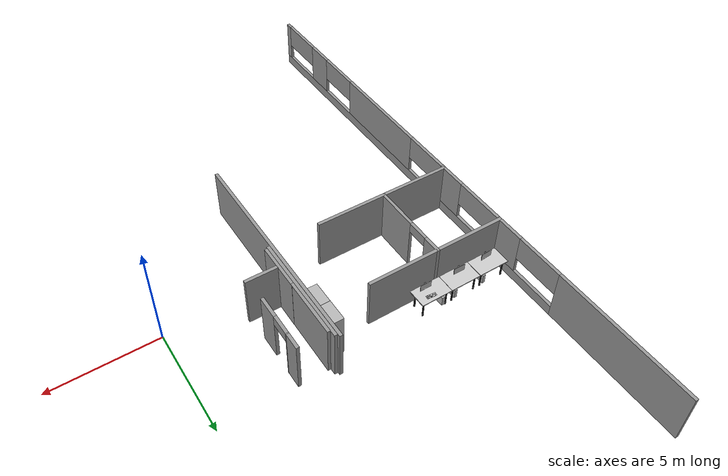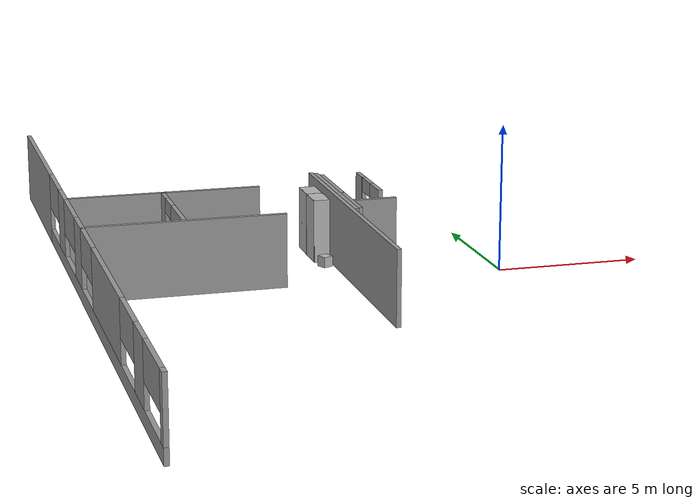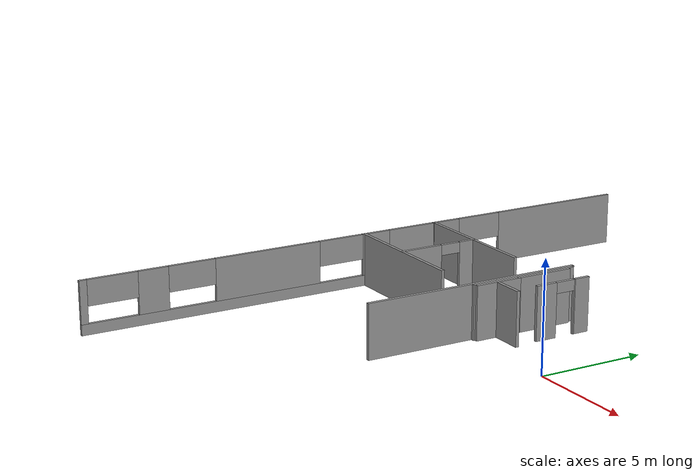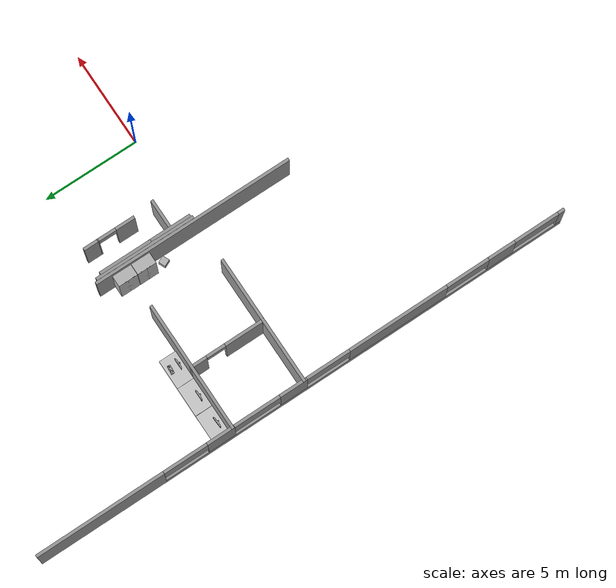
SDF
<sdf version="1.6">
 <world name="default">
  <model name="basement">
   <link name="Wall_1">
    <pose>-14.1254 0.001772 0 0 0 -1.5708</pose>
    <visual name="Wall_1_Visual_0">
     <pose>-10.8889 0 1.25 0 -0 0</pose>
     <geometry><box><size>6.72223 0.15 2.5</size></box></geometry>
     <material>
      <script><uri>file://media/materials/scripts/gazebo.material</uri><name>Gazebo/Grey</name></script>
      <ambient>1 1 1 1</ambient>
     </material>
    </visual>
    <collision name="Wall_1_Collision_0">
     <geometry><box><size>6.72223 0.15 2.5</size></box></geometry>
     <pose>-10.8889 0 1.25 0 -0 0</pose>
    </collision>
    <visual name="Wall_1_Visual_1">
     <pose>3.36112 0 0.25 0 -0 0</pose>
     <geometry><box><size>21.7778 0.15 0.5</size></box></geometry>
     <material>
      <script><uri>file://media/materials/scripts/gazebo.material</uri><name>Gazebo/Grey</name></script>
      <ambient>1 1 1 1</ambient>
     </material>
    </visual>
    <collision name="Wall_1_Collision_1">
     <geometry><box><size>21.7778 0.15 0.5</size></box></geometry>
     <pose>3.36112 0 0.25 0 -0 0</pose>
    </collision>
    <visual name="Wall_1_Visual_2">
     <pose>-4.48488 0 1.5 0 -0 0</pose>
     <geometry><box><size>1.45334 0.15 2</size></box></geometry>
     <material>
      <script><uri>file://media/materials/scripts/gazebo.material</uri><name>Gazebo/Grey</name></script>
      <ambient>1 1 1 1</ambient>
     </material>
    </visual>
    <collision name="Wall_1_Collision_2">
     <geometry><box><size>1.45334 0.15 2</size></box></geometry>
     <pose>-4.48488 0 1.5 0 -0 0</pose>
    </collision>
    <visual name="Wall_1_Visual_3">
     <pose>-0.57841 0 1.5 0 -0 0</pose>
     <geometry><box><size>1.45641 0.15 2</size></box></geometry>
     <material>
      <script><uri>file://media/materials/scripts/gazebo.material</uri><name>Gazebo/Grey</name></script>
      <ambient>1 1 1 1</ambient>
     </material>
    </visual>
    <collision name="Wall_1_Collision_3">
     <geometry><box><size>1.45641 0.15 2</size></box></geometry>
     <pose>-0.57841 0 1.5 0 -0 0</pose>
    </collision>
    <visual name="Wall_1_Visual_4">
     <pose>5.12077 0 1.5 0 -0 0</pose>
     <geometry><box><size>5.31789 0.15 2</size></box></geometry>
     <material>
      <script><uri>file://media/materials/scripts/gazebo.material</uri><name>Gazebo/Grey</name></script>
      <ambient>1 1 1 1</ambient>
     </material>
    </visual>
    <collision name="Wall_1_Collision_4">
     <geometry><box><size>5.31789 0.15 2</size></box></geometry>
     <pose>5.12077 0 1.5 0 -0 0</pose>
    </collision>
    <visual name="Wall_1_Visual_5">
     <pose>10.7967 0 1.5 0 -0 0</pose>
     <geometry><box><size>1.45641 0.15 2</size></box></geometry>
     <material>
      <script><uri>file://media/materials/scripts/gazebo.material</uri><name>Gazebo/Grey</name></script>
      <ambient>1 1 1 1</ambient>
     </material>
    </visual>
    <collision name="Wall_1_Collision_5">
     <geometry><box><size>1.45641 0.15 2</size></box></geometry>
     <pose>10.7967 0 1.5 0 -0 0</pose>
    </collision>
    <visual name="Wall_1_Visual_6">
     <pose>14.0784 0 1.5 0 -0 0</pose>
     <geometry><box><size>0.343295 0.15 2</size></box></geometry>
     <material>
      <script><uri>file://media/materials/scripts/gazebo.material</uri><name>Gazebo/Grey</name></script>
      <ambient>1 1 1 1</ambient>
     </material>
    </visual>
    <collision name="Wall_1_Collision_6">
     <geometry><box><size>0.343295 0.15 2</size></box></geometry>
     <pose>14.0784 0 1.5 0 -0 0</pose>
    </collision>
    <visual name="Wall_1_Visual_7">
     <pose>-6.36966 0 1.9 0 -0 0</pose>
     <geometry><box><size>2.31621 0.15 1.2</size></box></geometry>
     <material>
      <script><uri>file://media/materials/scripts/gazebo.material</uri><name>Gazebo/Grey</name></script>
      <ambient>1 1 1 1</ambient>
     </material>
    </visual>
    <collision name="Wall_1_Collision_7">
     <geometry><box><size>2.31621 0.15 1.2</size></box></geometry>
     <pose>-6.36966 0 1.9 0 -0 0</pose>
    </collision>
    <visual name="Wall_1_Visual_8">
     <pose>-2.53241 0 1.9 0 -0 0</pose>
     <geometry><box><size>2.4516 0.15 1.2</size></box></geometry>
     <material>
      <script><uri>file://media/materials/scripts/gazebo.material</uri><name>Gazebo/Grey</name></script>
      <ambient>1 1 1 1</ambient>
     </material>
    </visual>
    <collision name="Wall_1_Collision_8">
     <geometry><box><size>2.4516 0.15 1.2</size></box></geometry>
     <pose>-2.53241 0 1.9 0 -0 0</pose>
    </collision>
    <visual name="Wall_1_Visual_9">
     <pose>1.30581 0 1.9 0 -0 0</pose>
     <geometry><box><size>2.31203 0.15 1.2</size></box></geometry>
     <material>
      <script><uri>file://media/materials/scripts/gazebo.material</uri><name>Gazebo/Grey</name></script>
      <ambient>1 1 1 1</ambient>
     </material>
    </visual>
    <collision name="Wall_1_Collision_9">
     <geometry><box><size>2.31203 0.15 1.2</size></box></geometry>
     <pose>1.30581 0 1.9 0 -0 0</pose>
    </collision>
    <visual name="Wall_1_Visual_10">
     <pose>8.9241 0 1.9 0 -0 0</pose>
     <geometry><box><size>2.28877 0.15 1.2</size></box></geometry>
     <material>
      <script><uri>file://media/materials/scripts/gazebo.material</uri><name>Gazebo/Grey</name></script>
      <ambient>1 1 1 1</ambient>
     </material>
    </visual>
    <collision name="Wall_1_Collision_10">
     <geometry><box><size>2.28877 0.15 1.2</size></box></geometry>
     <pose>8.9241 0 1.9 0 -0 0</pose>
    </collision>
    <visual name="Wall_1_Visual_11">
     <pose>12.7158 0 1.9 0 -0 0</pose>
     <geometry><box><size>2.38181 0.15 1.2</size></box></geometry>
     <material>
      <script><uri>file://media/materials/scripts/gazebo.material</uri><name>Gazebo/Grey</name></script>
      <ambient>1 1 1 1</ambient>
     </material>
    </visual>
    <collision name="Wall_1_Collision_11">
     <geometry><box><size>2.38181 0.15 1.2</size></box></geometry>
     <pose>12.7158 0 1.9 0 -0 0</pose>
    </collision>
   </link>
   <link name="Wall_146">
    <collision name="Wall_146_Collision">
     <geometry><box><size>5.25 0.15 2.5</size></box></geometry>
     <pose>0 0 1.25 0 -0 0</pose>
    </collision>
    <visual name="Wall_146_Visual">
     <pose>0 0 1.25 0 -0 0</pose>
     <geometry><box><size>5.25 0.15 2.5</size></box></geometry>
     <material>
      <script><uri>file://media/materials/scripts/gazebo.material</uri><name>Gazebo/Grey</name></script>
      <ambient>1 1 1 1</ambient>
     </material>
    </visual>
    <pose>-5.04892 2.61682 0 0 -0 1.5708</pose>
   </link>
   <link name="Wall_17">
    <collision name="Wall_17_Collision">
     <geometry><box><size>6.75 0.15 2.5</size></box></geometry>
     <pose>0 0 1.25 0 -0 0</pose>
    </collision>
    <visual name="Wall_17_Visual">
     <pose>0 0 1.25 0 -0 0</pose>
     <geometry><box><size>6.75 0.15 2.5</size></box></geometry>
     <material>
      <script><uri>file://media/materials/scripts/gazebo.material</uri><name>Gazebo/Grey</name></script>
      <ambient>1 1 1 1</ambient>
     </material>
    </visual>
    <pose>-10.8156 0.004484 0 0 -0 0</pose>
   </link>
   <link name="Wall_19">
    <collision name="Wall_19_Collision">
     <geometry><box><size>6.75 0.15 2.5</size></box></geometry>
     <pose>0 0 1.25 0 -0 0</pose>
    </collision>
    <visual name="Wall_19_Visual">
     <pose>0 0 1.25 0 -0 0</pose>
     <geometry><box><size>6.75 0.15 2.5</size></box></geometry>
     <material>
      <script><uri>file://media/materials/scripts/gazebo.material</uri><name>Gazebo/Grey</name></script>
      <ambient>1 1 1 1</ambient>
     </material>
    </visual>
    <pose>-10.8156 3.85656 0 0 -0 0</pose>
   </link>
   <link name="Wall_21">
    <pose>-10.8088 1.93156 0 0 0 -1.5708</pose>
    <visual name="Wall_21_Visual_0">
     <pose>-1.56265 0 1.25 0 -0 0</pose>
     <geometry><box><size>0.874704 0.15 2.5</size></box></geometry>
     <material>
      <script><uri>file://media/materials/scripts/gazebo.material</uri><name>Gazebo/Grey</name></script>
      <ambient>1 1 1 1</ambient>
     </material>
    </visual>
    <collision name="Wall_21_Collision_0">
     <geometry><box><size>0.874704 0.15 2.5</size></box></geometry>
     <pose>-1.56265 0 1.25 0 -0 0</pose>
    </collision>
    <visual name="Wall_21_Visual_1">
     <pose>0.933876 0 1.25 0 -0 0</pose>
     <geometry><box><size>2.13225 0.15 2.5</size></box></geometry>
     <material>
      <script><uri>file://media/materials/scripts/gazebo.material</uri><name>Gazebo/Grey</name></script>
      <ambient>1 1 1 1</ambient>
     </material>
    </visual>
    <collision name="Wall_21_Collision_1">
     <geometry><box><size>2.13225 0.15 2.5</size></box></geometry>
     <pose>0.933876 0 1.25 0 -0 0</pose>
    </collision>
    <visual name="Wall_21_Visual_2">
     <pose>-0.628773 0 2.25 0 -0 0</pose>
     <geometry><box><size>0.993048 0.15 0.5</size></box></geometry>
     <material>
      <script><uri>file://media/materials/scripts/gazebo.material</uri><name>Gazebo/Grey</name></script>
      <ambient>1 1 1 1</ambient>
     </material>
    </visual>
    <collision name="Wall_21_Collision_2">
     <geometry><box><size>0.993048 0.15 0.5</size></box></geometry>
     <pose>-0.628773 0 2.25 0 -0 0</pose>
    </collision>
   </link>
   <link name="Wall_29">
    <collision name="Wall_29_Collision">
     <geometry><box><size>10.5 0.15 2.5</size></box></geometry>
     <pose>0 0 1.25 0 -0 0</pose>
    </collision>
    <visual name="Wall_29_Visual">
     <pose>0 0 1.25 0 -0 0</pose>
     <geometry><box><size>10.5 0.15 2.5</size></box></geometry>
     <material>
      <script><uri>file://media/materials/scripts/gazebo.material</uri><name>Gazebo/Grey</name></script>
      <ambient>1 1 1 1</ambient>
     </material>
    </visual>
    <pose>-5.20099 0.119525 0 0 0 -1.5708</pose>
   </link>
   <link name="Wall_47">
    <collision name="Wall_47_Collision">
     <geometry><box><size>2.75 0.15 2.5</size></box></geometry>
     <pose>0 0 1.25 0 -0 0</pose>
    </collision>
    <visual name="Wall_47_Visual">
     <pose>0 0 1.25 0 -0 0</pose>
     <geometry><box><size>2.75 0.15 2.5</size></box></geometry>
     <material>
      <script><uri>file://media/materials/scripts/gazebo.material</uri><name>Gazebo/Grey</name></script>
      <ambient>1 1 1 1</ambient>
     </material>
    </visual>
    <pose>-4.91322 3.5855 0 0 0 -1.5708</pose>
   </link>
   <link name="Wall_55">
    <collision name="Wall_55_Collision">
     <geometry><box><size>0.75 0.15 2.5</size></box></geometry>
     <pose>0 0 1.25 0 -0 0</pose>
    </collision>
    <visual name="Wall_55_Visual">
     <pose>0 0 1.25 0 -0 0</pose>
     <geometry><box><size>0.75 0.15 2.5</size></box></geometry>
     <material>
      <script><uri>file://media/materials/scripts/gazebo.material</uri><name>Gazebo/Grey</name></script>
      <ambient>1 1 1 1</ambient>
     </material>
    </visual>
    <pose>-3.56641 4.59591 0 0 0 -1.5708</pose>
   </link>
   <link name="Wall_59">
    <pose>-3.56584 3.2285 0 0 -0 1.5708</pose>
    <visual name="Wall_59_Visual_0">
     <pose>-0.488849 0 1.25 0 -0 0</pose>
     <geometry><box><size>1.0223 0.15 2.5</size></box></geometry>
     <material>
      <script><uri>file://media/materials/scripts/gazebo.material</uri><name>Gazebo/Grey</name></script>
      <ambient>1 1 1 1</ambient>
     </material>
    </visual>
    <collision name="Wall_59_Collision_0">
     <geometry><box><size>1.0223 0.15 2.5</size></box></geometry>
     <pose>-0.488849 0 1.25 0 -0 0</pose>
    </collision>
    <visual name="Wall_59_Visual_1">
     <pose>0.972494 0 1.25 0 -0 0</pose>
     <geometry><box><size>0.055013 0.15 2.5</size></box></geometry>
     <material>
      <script><uri>file://media/materials/scripts/gazebo.material</uri><name>Gazebo/Grey</name></script>
      <ambient>1 1 1 1</ambient>
     </material>
    </visual>
    <collision name="Wall_59_Collision_1">
     <geometry><box><size>0.055013 0.15 2.5</size></box></geometry>
     <pose>0.972494 0 1.25 0 -0 0</pose>
    </collision>
    <visual name="Wall_59_Visual_2">
     <pose>0.483645 0 2.25 0 -0 0</pose>
     <geometry><box><size>0.922684 0.15 0.5</size></box></geometry>
     <material>
      <script><uri>file://media/materials/scripts/gazebo.material</uri><name>Gazebo/Grey</name></script>
      <ambient>1 1 1 1</ambient>
     </material>
    </visual>
    <collision name="Wall_59_Collision_2">
     <geometry><box><size>0.922684 0.15 0.5</size></box></geometry>
     <pose>0.483645 0 2.25 0 -0 0</pose>
    </collision>
   </link>
   <link name="Wall_61">
    <collision name="Wall_61_Collision">
     <geometry><box><size>2.25 0.15 2.5</size></box></geometry>
     <pose>0 0 1.25 0 -0 0</pose>
    </collision>
    <visual name="Wall_61_Visual">
     <pose>0 0 1.25 0 -0 0</pose>
     <geometry><box><size>2.25 0.15 2.5</size></box></geometry>
     <material>
      <script><uri>file://media/materials/scripts/gazebo.material</uri><name>Gazebo/Grey</name></script>
      <ambient>1 1 1 1</ambient>
     </material>
    </visual>
    <pose>-4.90974 1.19358 0 0 -0 1.5708</pose>
   </link>
   <link name="Wall_69">
    <collision name="Wall_69_Collision">
     <geometry><box><size>1.5 0.15 2.5</size></box></geometry>
     <pose>0 0 1.25 0 -0 0</pose>
    </collision>
    <visual name="Wall_69_Visual">
     <pose>0 0 1.25 0 -0 0</pose>
     <geometry><box><size>1.5 0.15 2.5</size></box></geometry>
     <material>
      <script><uri>file://media/materials/scripts/gazebo.material</uri><name>Gazebo/Grey</name></script>
      <ambient>1 1 1 1</ambient>
     </material>
    </visual>
    <pose>-4.10188 1.14165 0 0 -0 0</pose>
   </link>
   <static>1</static>
  </model>
  <model name="wardrobe_0">
   <link name="link">
    <visual name="visual">
     <geometry><mesh><uri>model://cabinet/meshes/cabinet.dae</uri><scale>1 1 1</scale></mesh></geometry>
    </visual>
    <collision name="collision">
     <geometry><mesh><uri>model://cabinet/meshes/cabinet.dae</uri><scale>1 1 1</scale></mesh></geometry>
    </collision>
   </link>
   <static>1</static>
   <pose>-5.55 4.05207 0 0 0 -1.5707</pose>
  </model>
  <model name="wardrobe_1">
   <link name="link">
    <visual name="visual">
     <geometry><mesh><uri>model://cabinet/meshes/cabinet.dae</uri><scale>1 1 1</scale></mesh></geometry>
    </visual>
    <collision name="collision">
     <geometry><mesh><uri>model://cabinet/meshes/cabinet.dae</uri><scale>1 1 1</scale></mesh></geometry>
    </collision>
   </link>
   <static>1</static>
   <pose>-5.55012 3.03744 0 0 0 -1.5707</pose>
  </model>
  <model name="office_table_2">
   <link name="link">
    <visual name="visual">
     <geometry><mesh><uri>model://office_table/meshes/office_table.dae</uri><scale>1 1 1</scale></mesh></geometry>
    </visual>
    <collision name="collision">
     <geometry><mesh><uri>model://office_table/meshes/office_table.dae</uri><scale>1 1 1</scale></mesh></geometry>
    </collision>
   </link>
   <static>1</static>
   <pose>-10.1891 4.4 0 0 -0 0</pose>
  </model>
  <model name="office_table_5">
   <link name="link">
    <visual name="visual">
     <geometry><mesh><uri>model://office_table/meshes/office_table.dae</uri><scale>1 1 1</scale></mesh></geometry>
    </visual>
    <collision name="collision">
     <geometry><mesh><uri>model://office_table/meshes/office_table.dae</uri><scale>1 1 1</scale></mesh></geometry>
    </collision>
   </link>
   <static>1</static>
   <pose>-11.7071 4.4 0 0 -0 0</pose>
  </model>
  <model name="office_table_6">
   <link name="link">
    <visual name="visual">
     <geometry><mesh><uri>model://office_table/meshes/office_table.dae</uri><scale>1 1 1</scale></mesh></geometry>
    </visual>
    <collision name="collision">
     <geometry><mesh><uri>model://office_table/meshes/office_table.dae</uri><scale>1 1 1</scale></mesh></geometry>
    </collision>
   </link>
   <static>1</static>
   <pose>-13.2354 4.4 0 0 -0 0</pose>
  </model>
  <model name="pc">
   <link name="link">
    <visual name="visual">
     <geometry><mesh><uri>model://pc/meshes/pc.dae</uri><scale>1 1 1</scale></mesh></geometry>
    </visual>
    <collision name="collision">
     <geometry><mesh><uri>model://pc/meshes/pc.dae</uri><scale>1 1 1</scale></mesh></geometry>
    </collision>
   </link>
   <static>1</static>
   <pose>-11.3419 4.48606 0 0 -0 3.141</pose>
  </model>
  <model name="pc_0">
   <link name="link">
    <visual name="visual">
     <geometry><mesh><uri>model://pc/meshes/pc.dae</uri><scale>1 1 1</scale></mesh></geometry>
    </visual>
    <collision name="collision">
     <geometry><mesh><uri>model://pc/meshes/pc.dae</uri><scale>1 1 1</scale></mesh></geometry>
    </collision>
   </link>
   <static>1</static>
   <pose>-12.8626 4.49995 0 0 -0 3.141</pose>
  </model>
  <model name="pc_1">
   <link name="link">
    <visual name="visual">
     <geometry><mesh><uri>model://pc/meshes/pc.dae</uri><scale>1 1 1</scale></mesh></geometry>
    </visual>
    <collision name="collision">
     <geometry><mesh><uri>model://pc/meshes/pc.dae</uri><scale>1 1 1</scale></mesh></geometry>
    </collision>
   </link>
   <static>1</static>
   <pose>-10.6413 4.52563 0 0 -0 3.141</pose>
  </model>
  <model name="monitor">
   <link name="link">
    <visual name="visual">
     <geometry><mesh><uri>model://monitor/meshes/monitor.dae</uri><scale>1 1 1</scale></mesh></geometry>
    </visual>
    <collision name="collision">
     <geometry><mesh><uri>model://monitor/meshes/monitor.dae</uri><scale>1 1 1</scale></mesh></geometry>
    </collision>
   </link>
   <static>1</static>
   <pose>-13.3236 4.21798 1 0 0 -3.07367</pose>
  </model>
  <model name="monitor_0">
   <link name="link">
    <visual name="visual">
     <geometry><mesh><uri>model://monitor/meshes/monitor.dae</uri><scale>1 1 1</scale></mesh></geometry>
    </visual>
    <collision name="collision">
     <geometry><mesh><uri>model://monitor/meshes/monitor.dae</uri><scale>1 1 1</scale></mesh></geometry>
    </collision>
   </link>
   <static>1</static>
   <pose>-11.842 4.2272 1 0 -0 3.12865</pose>
  </model>
  <model name="monitor_1">
   <link name="link">
    <visual name="visual">
     <geometry><mesh><uri>model://monitor/meshes/monitor.dae</uri><scale>1 1 1</scale></mesh></geometry>
    </visual>
    <collision name="collision">
     <geometry><mesh><uri>model://monitor/meshes/monitor.dae</uri><scale>1 1 1</scale></mesh></geometry>
    </collision>
   </link>
   <static>1</static>
   <pose>-10.0972 4.20184 1 0 0 -3.12724</pose>
  </model>
  <model name="keyboard_4">
   <link name="link">
    <visual name="visual">
     <geometry><mesh><uri>model://keyboard/meshes/keyboard.dae</uri><scale>1 1 1</scale></mesh></geometry>
    </visual>
    <collision name="collision">
     <geometry><mesh><uri>model://keyboard/meshes/keyboard.dae</uri><scale>1 1 1</scale></mesh></geometry>
    </collision>
   </link>
   <static>1</static>
   <pose>-10.0948 4.61573 0.78 0 -0 3.05121</pose>
  </model>
  <model name="box_2">
   <link name="link">
    <visual name="visual">
     <geometry><mesh><uri>model://box/meshes/box.dae</uri><scale>1 1 1</scale></mesh></geometry>
    </visual>
    <collision name="collision">
     <geometry><mesh><uri>model://box/meshes/box.dae</uri><scale>1 1 1</scale></mesh></geometry>
    </collision>
   </link>
   <static>1</static>
   <pose>-5.52873 2.06798 0 0 -0 0.411495</pose>
  </model>
 </world>
</sdf>
